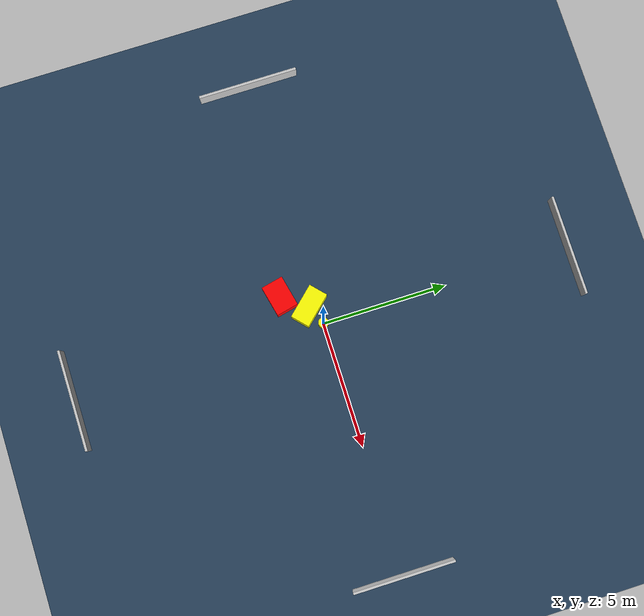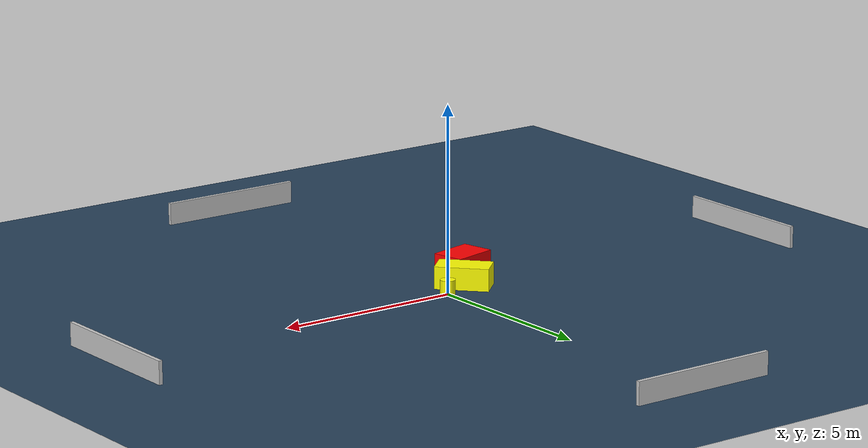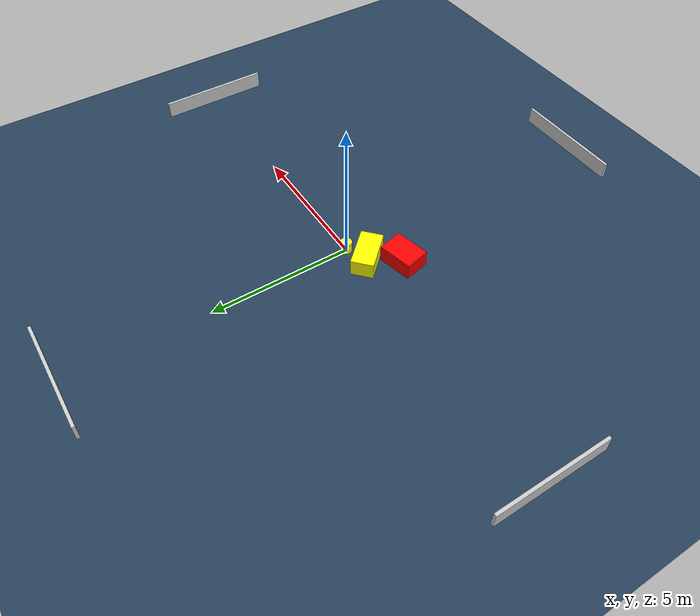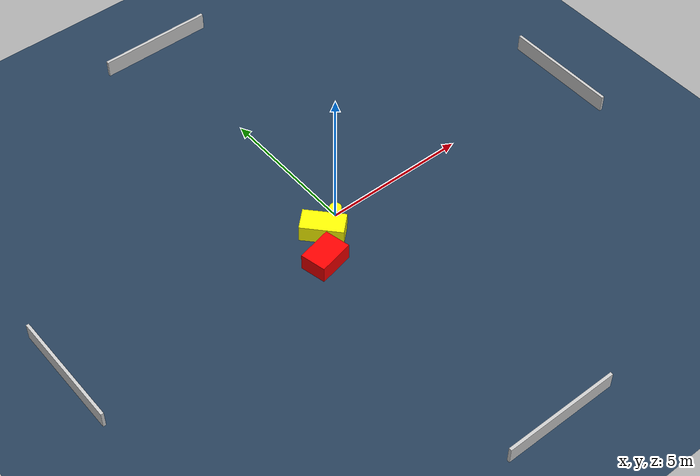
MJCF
<?xml version="1.0" ?>
<mujoco model="generated_environment">
  <option timestep="0.01" integrator="RK4" cone="elliptic"/>
  <default>
    <geom density="1"/>
  </default>
  <asset>
    <texture builtin="gradient" height="3072" name="skybox" rgb1="0.3 0.5 0.7" rgb2="0 0 0" type="skybox" width="512"/>
    <texture builtin="checker" height="300" name="groundplane" rgb1="0.2 0.3 0.4" rgb2="0.1 0.2 0.3" type="2d" width="300"/>
    <material name="groundplane" reflectance="0.2" texrepeat="5 5" texture="groundplane"/>
  </asset>
  <worldbody>
    <light dir="0 0 -1" directional="true" pos="0 0 1.5"/>
    <geom condim="3" friction="0.5 0.005 0.001" material="groundplane" name="floor" pos="0 0 0" size="0 0 0.05" type="plane"/>
    <body name="walls">
      <geom name="wall_1" condim="4" pos="-10.0 0.0 0.3" rgba="0.800000011920929 0.800000011920929 0.800000011920929 1.0" size="0.05 2.0 0.3" type="box"/>
      <geom name="wall_2" condim="4" pos="10.0 0.0 0.3" rgba="0.800000011920929 0.800000011920929 0.800000011920929 1.0" size="0.05 2.0 0.3" type="box"/>
      <geom name="wall_3" condim="4" pos="0.0 -10.0 0.3" rgba="0.800000011920929 0.800000011920929 0.800000011920929 1.0" size="2.0 0.05 0.3" type="box"/>
      <geom name="wall_4" condim="4" pos="0.0 10.0 0.3" rgba="0.800000011920929 0.800000011920929 0.800000011920929 1.0" size="2.0 0.05 0.3" type="box"/>
    </body>
    <body name="robot">
      <joint name="joint_x" type="slide" pos="0 0 0" axis="1 0 0"/>
      <joint name="joint_y" type="slide" pos="0 0 0" axis="0 1 0"/>
      <geom name="robot" type="cylinder" pos="0.0 0.0 0.2" size="0.2 0.2 0.0" mass="5.0" friction="1.0 0.005 0.0001" condim="4" rgba="1.0 1.0 0.0 1.0"/>
    </body>
    <body name="obstacle_1_movable">
      <geom name="obstacle_1_movable" condim="4" pos="-0.7721844996367533 -0.33457304970170043 0.3" euler="0 0 312.62087357702757" friction="0.0 0.005 0.001" rgba="1.0 1.0 0.0 1.0" size="0.7137543067004735 0.38682494255851296 0.3" type="box" mass="0.1"/>
      <joint type="free"/>
    </body>
    <body name="obstacle_2_static">
      <geom name="obstacle_2_static" condim="4" pos="-1.468507895451086 -1.3062741629296417 0.3" euler="0 0 102.687955707562" friction="0.0 0.005 0.001" rgba="1.0 0.0 0.0 1.0" size="0.4438594193314882 0.6148165550066009 0.3" type="box"/>
    </body>
  </worldbody>
  <actuator>
    <motor name="actuator_x" joint="joint_x" gear="1" ctrlrange="-1 1"/>
    <motor name="actuator_y" joint="joint_y" gear="1" ctrlrange="-1 1"/>
  </actuator>
</mujoco>
